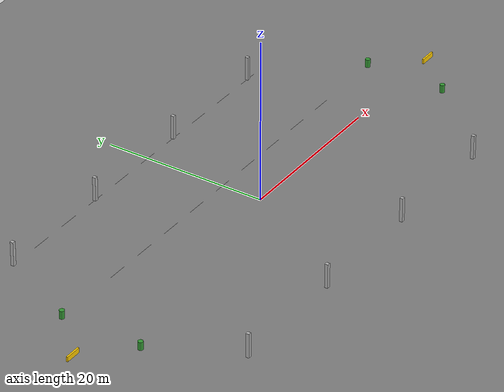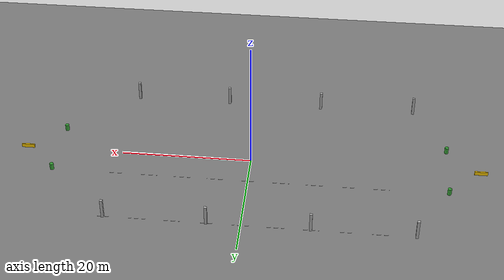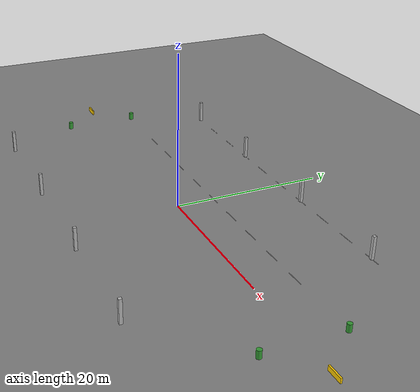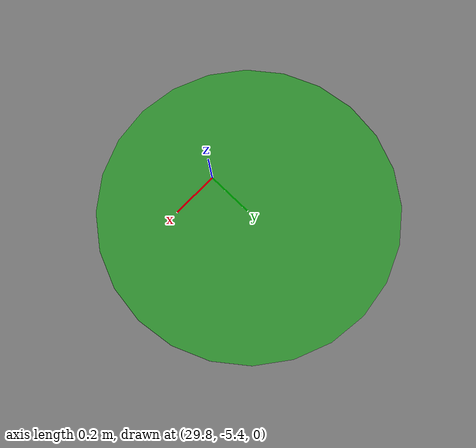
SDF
<sdf version="1.6">
 <world name="parking_lot">
  <physics type="ode">
   <max_step_size>0.001</max_step_size>
   <real_time_factor>1.0</real_time_factor>
   <real_time_update_rate>1000</real_time_update_rate>
  </physics>
  <scene><ambient>0.8 0.8 0.8 1</ambient><shadows>true</shadows><grid>false</grid></scene>
  <light type="directional" name="sun">
   <pose>0 0 10 0 0 0</pose>
   <diffuse>0.8 0.8 0.8 1</diffuse>
   <specular>0.2 0.2 0.2 1</specular>
   <attenuation>
    <range>1000</range>
    <constant>0.9</constant>
    <linear>0.01</linear>
    <quadratic>0.001</quadratic>
   </attenuation>
   <direction>-0.5 0.1 -0.9</direction>
  </light>
  <model name="ground_plane">
   <static>true</static>
   <link name="link">
    <collision name="collision">
     <geometry><plane><normal>0 0 1</normal><size>100 100</size></plane></geometry>
     <surface><friction><ode><mu>100</mu><mu2>100</mu2></ode></friction></surface>
    </collision>
    <visual name="visual">
     <geometry><plane><normal>0 0 1</normal><size>100 100</size></plane></geometry>
     <material>
      <ambient>0.5 0.5 0.5 1</ambient>
      <diffuse>0.5 0.5 0.5 1</diffuse>
      <specular>0.1 0.1 0.1 1</specular>
     </material>
    </visual>
   </link>
  </model>
  <model name="parking_lines">
   <static>true</static>
   <link name="line_row_a">
    <pose>0 5 0.01 0 0 0</pose>
    <visual name="line_a1">
     <geometry><box><size>2.5 0.05 0.01</size></box></geometry>
     <material><ambient>1 1 1 1</ambient></material>
    </visual>
    <visual name="line_a2">
     <pose>5 0 0 0 0 0</pose>
     <geometry><box><size>2.5 0.05 0.01</size></box></geometry>
     <material><ambient>1 1 1 1</ambient></material>
    </visual>
    <visual name="line_a3">
     <pose>10 0 0 0 0 0</pose>
     <geometry><box><size>2.5 0.05 0.01</size></box></geometry>
     <material><ambient>1 1 1 1</ambient></material>
    </visual>
    <visual name="line_a4">
     <pose>15 0 0 0 0 0</pose>
     <geometry><box><size>2.5 0.05 0.01</size></box></geometry>
     <material><ambient>1 1 1 1</ambient></material>
    </visual>
    <visual name="line_a5">
     <pose>20 0 0 0 0 0</pose>
     <geometry><box><size>2.5 0.05 0.01</size></box></geometry>
     <material><ambient>1 1 1 1</ambient></material>
    </visual>
    <visual name="line_a6">
     <pose>-5 0 0 0 0 0</pose>
     <geometry><box><size>2.5 0.05 0.01</size></box></geometry>
     <material><ambient>1 1 1 1</ambient></material>
    </visual>
    <visual name="line_a7">
     <pose>-10 0 0 0 0 0</pose>
     <geometry><box><size>2.5 0.05 0.01</size></box></geometry>
     <material><ambient>1 1 1 1</ambient></material>
    </visual>
    <visual name="line_a8">
     <pose>-15 0 0 0 0 0</pose>
     <geometry><box><size>2.5 0.05 0.01</size></box></geometry>
     <material><ambient>1 1 1 1</ambient></material>
    </visual>
    <visual name="line_a9">
     <pose>-20 0 0 0 0 0</pose>
     <geometry><box><size>2.5 0.05 0.01</size></box></geometry>
     <material><ambient>1 1 1 1</ambient></material>
    </visual>
   </link>
   <link name="line_row_b">
    <pose>0 15 0.01 0 0 0</pose>
    <visual name="line_b1">
     <geometry><box><size>2.5 0.05 0.01</size></box></geometry>
     <material><ambient>1 1 1 1</ambient></material>
    </visual>
    <visual name="line_b2">
     <pose>5 0 0 0 0 0</pose>
     <geometry><box><size>2.5 0.05 0.01</size></box></geometry>
     <material><ambient>1 1 1 1</ambient></material>
    </visual>
    <visual name="line_b3">
     <pose>10 0 0 0 0 0</pose>
     <geometry><box><size>2.5 0.05 0.01</size></box></geometry>
     <material><ambient>1 1 1 1</ambient></material>
    </visual>
    <visual name="line_b4">
     <pose>15 0 0 0 0 0</pose>
     <geometry><box><size>2.5 0.05 0.01</size></box></geometry>
     <material><ambient>1 1 1 1</ambient></material>
    </visual>
    <visual name="line_b5">
     <pose>20 0 0 0 0 0</pose>
     <geometry><box><size>2.5 0.05 0.01</size></box></geometry>
     <material><ambient>1 1 1 1</ambient></material>
    </visual>
    <visual name="line_b6">
     <pose>-5 0 0 0 0 0</pose>
     <geometry><box><size>2.5 0.05 0.01</size></box></geometry>
     <material><ambient>1 1 1 1</ambient></material>
    </visual>
    <visual name="line_b7">
     <pose>-10 0 0 0 0 0</pose>
     <geometry><box><size>2.5 0.05 0.01</size></box></geometry>
     <material><ambient>1 1 1 1</ambient></material>
    </visual>
    <visual name="line_b8">
     <pose>-15 0 0 0 0 0</pose>
     <geometry><box><size>2.5 0.05 0.01</size></box></geometry>
     <material><ambient>1 1 1 1</ambient></material>
    </visual>
    <visual name="line_b9">
     <pose>-20 0 0 0 0 0</pose>
     <geometry><box><size>2.5 0.05 0.01</size></box></geometry>
     <material><ambient>1 1 1 1</ambient></material>
    </visual>
   </link>
  </model>
  <model name="pillars">
   <static>true</static>
   <link name="pillar_1">
    <pose>-25 -15 1.5 0 0 0</pose>
    <collision name="collision"><geometry><box><size>0.4 0.4 3</size></box></geometry></collision>
    <visual name="visual">
     <geometry><box><size>0.4 0.4 3</size></box></geometry>
     <material><ambient>0.7 0.7 0.7 1</ambient></material>
    </visual>
   </link>
   <link name="pillar_2">
    <pose>-10 -15 1.5 0 0 0</pose>
    <collision name="collision"><geometry><box><size>0.4 0.4 3</size></box></geometry></collision>
    <visual name="visual">
     <geometry><box><size>0.4 0.4 3</size></box></geometry>
     <material><ambient>0.7 0.7 0.7 1</ambient></material>
    </visual>
   </link>
   <link name="pillar_3">
    <pose>5 -15 1.5 0 0 0</pose>
    <collision name="collision"><geometry><box><size>0.4 0.4 3</size></box></geometry></collision>
    <visual name="visual">
     <geometry><box><size>0.4 0.4 3</size></box></geometry>
     <material><ambient>0.7 0.7 0.7 1</ambient></material>
    </visual>
   </link>
   <link name="pillar_4">
    <pose>20 -15 1.5 0 0 0</pose>
    <collision name="collision"><geometry><box><size>0.4 0.4 3</size></box></geometry></collision>
    <visual name="visual">
     <geometry><box><size>0.4 0.4 3</size></box></geometry>
     <material><ambient>0.7 0.7 0.7 1</ambient></material>
    </visual>
   </link>
   <link name="pillar_5">
    <pose>-25 15 1.5 0 0 0</pose>
    <collision name="collision"><geometry><box><size>0.4 0.4 3</size></box></geometry></collision>
    <visual name="visual">
     <geometry><box><size>0.4 0.4 3</size></box></geometry>
     <material><ambient>0.7 0.7 0.7 1</ambient></material>
    </visual>
   </link>
   <link name="pillar_6">
    <pose>-10 15 1.5 0 0 0</pose>
    <collision name="collision"><geometry><box><size>0.4 0.4 3</size></box></geometry></collision>
    <visual name="visual">
     <geometry><box><size>0.4 0.4 3</size></box></geometry>
     <material><ambient>0.7 0.7 0.7 1</ambient></material>
    </visual>
   </link>
   <link name="pillar_7">
    <pose>5 15 1.5 0 0 0</pose>
    <collision name="collision"><geometry><box><size>0.4 0.4 3</size></box></geometry></collision>
    <visual name="visual">
     <geometry><box><size>0.4 0.4 3</size></box></geometry>
     <material><ambient>0.7 0.7 0.7 1</ambient></material>
    </visual>
   </link>
   <link name="pillar_8">
    <pose>20 15 1.5 0 0 0</pose>
    <collision name="collision"><geometry><box><size>0.4 0.4 3</size></box></geometry></collision>
    <visual name="visual">
     <geometry><box><size>0.4 0.4 3</size></box></geometry>
     <material><ambient>0.7 0.7 0.7 1</ambient></material>
    </visual>
   </link>
  </model>
  <model name="trash_cans">
   <static>true</static>
   <link name="trash_1">
    <pose>-30 -5 0.5 0 0 0</pose>
    <collision name="collision">
     <geometry><cylinder><radius>0.3</radius><length>1</length></cylinder></geometry>
    </collision>
    <visual name="visual">
     <geometry><cylinder><radius>0.3</radius><length>1</length></cylinder></geometry>
     <material><ambient>0.2 0.6 0.2 1</ambient></material>
    </visual>
   </link>
   <link name="trash_2">
    <pose>30 -5 0.5 0 0 0</pose>
    <collision name="collision">
     <geometry><cylinder><radius>0.3</radius><length>1</length></cylinder></geometry>
    </collision>
    <visual name="visual">
     <geometry><cylinder><radius>0.3</radius><length>1</length></cylinder></geometry>
     <material><ambient>0.2 0.6 0.2 1</ambient></material>
    </visual>
   </link>
   <link name="trash_3">
    <pose>30 5 0.5 0 0 0</pose>
    <collision name="collision">
     <geometry><cylinder><radius>0.3</radius><length>1</length></cylinder></geometry>
    </collision>
    <visual name="visual">
     <geometry><cylinder><radius>0.3</radius><length>1</length></cylinder></geometry>
     <material><ambient>0.2 0.6 0.2 1</ambient></material>
    </visual>
   </link>
   <link name="trash_4">
    <pose>-30 5 0.5 0 0 0</pose>
    <collision name="collision">
     <geometry><cylinder><radius>0.3</radius><length>1</length></cylinder></geometry>
    </collision>
    <visual name="visual">
     <geometry><cylinder><radius>0.3</radius><length>1</length></cylinder></geometry>
     <material><ambient>0.2 0.6 0.2 1</ambient></material>
    </visual>
   </link>
  </model>
  <model name="barriers">
   <static>true</static>
   <link name="barrier_1">
    <pose>-35 0 0.3 0 0 0</pose>
    <collision name="collision"><geometry><box><size>2 0.2 0.6</size></box></geometry></collision>
    <visual name="visual">
     <geometry><box><size>2 0.2 0.6</size></box></geometry>
     <material><ambient>1 0.8 0 1</ambient></material>
    </visual>
   </link>
   <link name="barrier_2">
    <pose>35 0 0.3 0 0 0</pose>
    <collision name="collision"><geometry><box><size>2 0.2 0.6</size></box></geometry></collision>
    <visual name="visual">
     <geometry><box><size>2 0.2 0.6</size></box></geometry>
     <material><ambient>1 0.8 0 1</ambient></material>
    </visual>
   </link>
  </model>
 </world>
</sdf>
